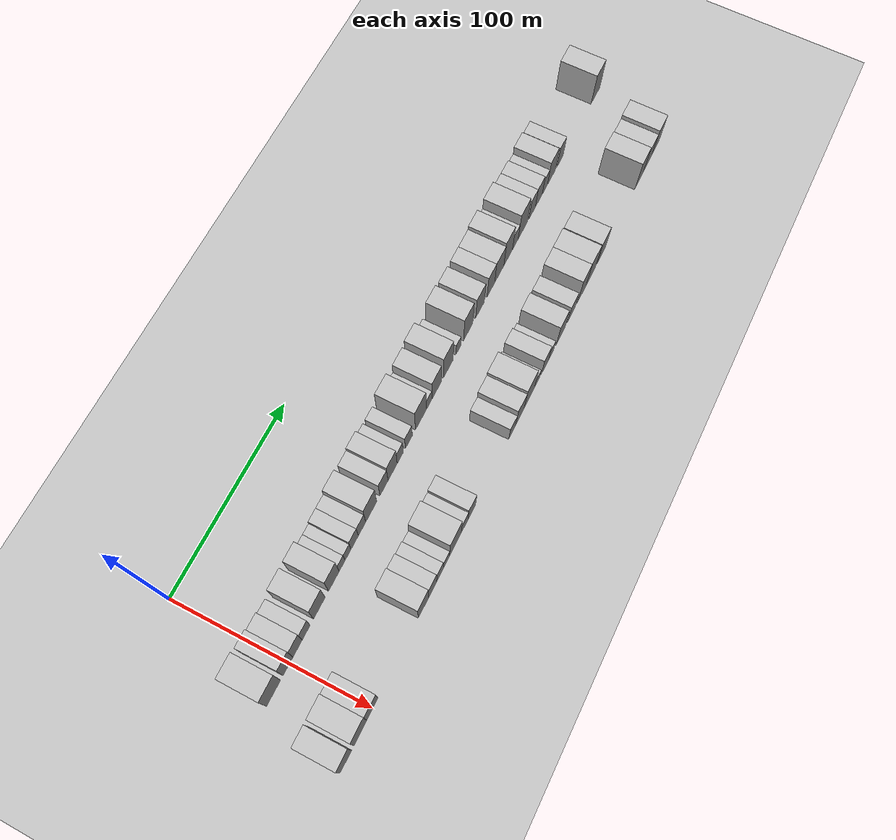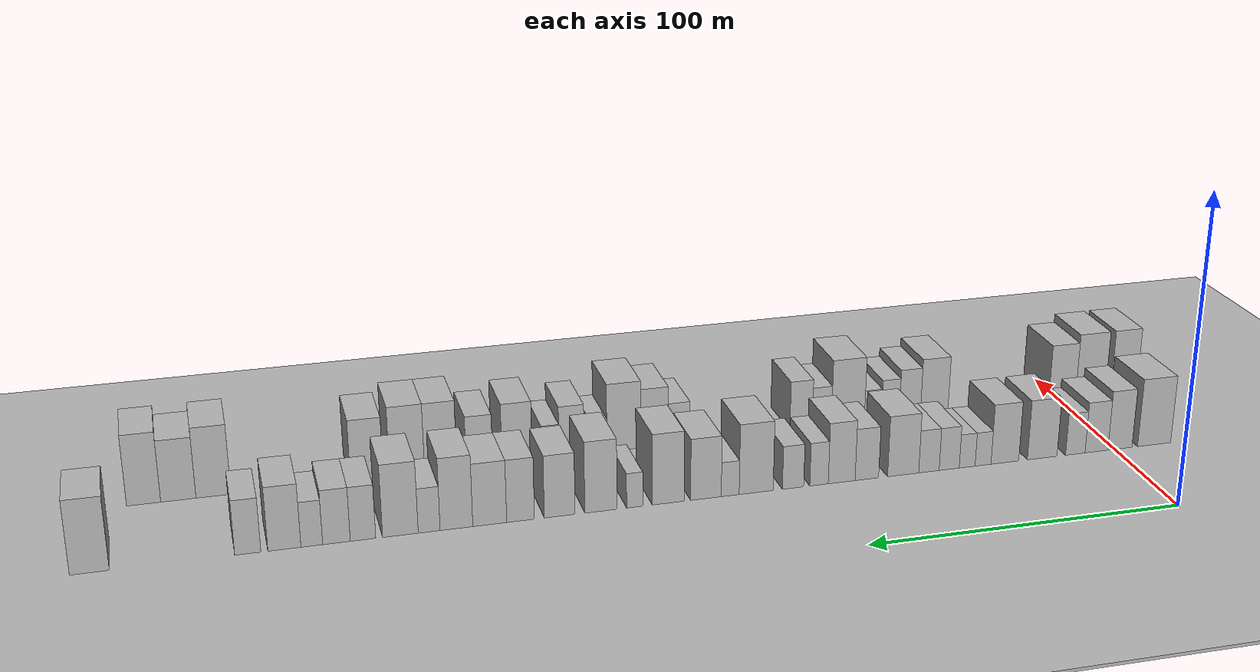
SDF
<sdf version="1.6">
 <world name="default">
  <include><name>ground_plane_1</name><uri>model://HANNAS_ground_plane</uri></include>
  <include>
   <name>ground_plane_2</name>
   <uri>model://HANNAS_ground_plane</uri>
   <pose>100 0 0  0 0 0</pose>
  </include>
  <model name="building_27">
   <static>1</static>
   <pose>50.0000 -13.4424 0 0.000000 0.000000 0.000000</pose>
   <link name="link">
    <pose>0 0 12.00 0 0 0</pose>
    <collision name="collision"><geometry><box><size>20.0000 11.8265 24.0000</size></box></geometry></collision>
    <visual name="visual">
     <cast_shadows>0</cast_shadows>
     <geometry><box><size>20.0000 11.8265 24.0000</size></box></geometry>
     <material>
      <script>
       <uri>model://HANNAS_wall/materials/scripts</uri>
       <uri>model://HANNAS_wall/materials/textures</uri>
       <name>vrc/HANNAS_wall</name>
      </script>
     </material>
    </visual>
   </link>
  </model>
  <model name="building_28">
   <static>1</static>
   <pose>50.0000 -1.2540 0 0.000000 0.000000 0.000000</pose>
   <link name="link">
    <pose>0 0 10.50 0 0 0</pose>
    <collision name="collision"><geometry><box><size>20.0000 8.5501 21.0000</size></box></geometry></collision>
    <visual name="visual">
     <cast_shadows>0</cast_shadows>
     <geometry><box><size>20.0000 8.5501 21.0000</size></box></geometry>
     <material>
      <script>
       <uri>model://HANNAS_wall/materials/scripts</uri>
       <uri>model://HANNAS_wall/materials/textures</uri>
       <name>vrc/HANNAS_wall</name>
      </script>
     </material>
    </visual>
   </link>
  </model>
  <model name="building_29">
   <static>1</static>
   <pose>50.0000 7.0445 0 0.000000 0.000000 0.000000</pose>
   <link name="link">
    <pose>0 0 9.00 0 0 0</pose>
    <collision name="collision"><geometry><box><size>20.0000 8.0470 18.0000</size></box></geometry></collision>
    <visual name="visual">
     <cast_shadows>0</cast_shadows>
     <geometry><box><size>20.0000 8.0470 18.0000</size></box></geometry>
     <material>
      <script>
       <uri>model://HANNAS_wall/materials/scripts</uri>
       <uri>model://HANNAS_wall/materials/textures</uri>
       <name>vrc/HANNAS_wall</name>
      </script>
     </material>
    </visual>
   </link>
  </model>
  <model name="building_30">
   <static>1</static>
   <pose>50.0000 14.4716 0 0.000000 0.000000 0.000000</pose>
   <link name="link">
    <pose>0 0 7.50 0 0 0</pose>
    <collision name="collision"><geometry><box><size>20.0000 6.8073 15.0000</size></box></geometry></collision>
    <visual name="visual">
     <cast_shadows>0</cast_shadows>
     <geometry><box><size>20.0000 6.8073 15.0000</size></box></geometry>
     <material>
      <script>
       <uri>model://HANNAS_wall/materials/scripts</uri>
       <uri>model://HANNAS_wall/materials/textures</uri>
       <name>vrc/HANNAS_wall</name>
      </script>
     </material>
    </visual>
   </link>
  </model>
  <model name="building_31">
   <static>1</static>
   <pose>50.0000 26.0191 0 0.000000 0.000000 0.000000</pose>
   <link name="link">
    <pose>0 0 10.50 0 0 0</pose>
    <collision name="collision"><geometry><box><size>20.0000 10.2875 21.0000</size></box></geometry></collision>
    <visual name="visual">
     <cast_shadows>0</cast_shadows>
     <geometry><box><size>20.0000 10.2875 21.0000</size></box></geometry>
     <material>
      <script>
       <uri>model://HANNAS_wall/materials/scripts</uri>
       <uri>model://HANNAS_wall/materials/textures</uri>
       <name>vrc/HANNAS_wall</name>
      </script>
     </material>
    </visual>
   </link>
  </model>
  <model name="building_32">
   <static>1</static>
   <pose>50.0000 38.9282 0 0.000000 0.000000 0.000000</pose>
   <link name="link">
    <pose>0 0 10.50 0 0 0</pose>
    <collision name="collision"><geometry><box><size>20.0000 9.5307 21.0000</size></box></geometry></collision>
    <visual name="visual">
     <cast_shadows>0</cast_shadows>
     <geometry><box><size>20.0000 9.5307 21.0000</size></box></geometry>
     <material>
      <script>
       <uri>model://HANNAS_wall/materials/scripts</uri>
       <uri>model://HANNAS_wall/materials/textures</uri>
       <name>vrc/HANNAS_wall</name>
      </script>
     </material>
    </visual>
   </link>
  </model>
  <model name="building_33">
   <static>1</static>
   <pose>50.0000 46.4095 0 0.000000 0.000000 0.000000</pose>
   <link name="link">
    <pose>0 0 6.00 0 0 0</pose>
    <collision name="collision"><geometry><box><size>20.0000 5.4320 12.0000</size></box></geometry></collision>
    <visual name="visual">
     <cast_shadows>0</cast_shadows>
     <geometry><box><size>20.0000 5.4320 12.0000</size></box></geometry>
     <material>
      <script>
       <uri>model://HANNAS_wall/materials/scripts</uri>
       <uri>model://HANNAS_wall/materials/textures</uri>
       <name>vrc/HANNAS_wall</name>
      </script>
     </material>
    </visual>
   </link>
  </model>
  <model name="building_34">
   <static>1</static>
   <pose>50.0000 51.8343 0 0.000000 0.000000 0.000000</pose>
   <link name="link">
    <pose>0 0 6.00 0 0 0</pose>
    <collision name="collision"><geometry><box><size>20.0000 5.4175 12.0000</size></box></geometry></collision>
    <visual name="visual">
     <cast_shadows>0</cast_shadows>
     <geometry><box><size>20.0000 5.4175 12.0000</size></box></geometry>
     <material>
      <script>
       <uri>model://HANNAS_wall/materials/scripts</uri>
       <uri>model://HANNAS_wall/materials/textures</uri>
       <name>vrc/HANNAS_wall</name>
      </script>
     </material>
    </visual>
   </link>
  </model>
  <model name="building_35">
   <static>1</static>
   <pose>50.0000 57.9451 0 0.000000 0.000000 0.000000</pose>
   <link name="link">
    <pose>0 0 7.50 0 0 0</pose>
    <collision name="collision"><geometry><box><size>20.0000 6.8042 15.0000</size></box></geometry></collision>
    <visual name="visual">
     <cast_shadows>0</cast_shadows>
     <geometry><box><size>20.0000 6.8042 15.0000</size></box></geometry>
     <material>
      <script>
       <uri>model://HANNAS_wall/materials/scripts</uri>
       <uri>model://HANNAS_wall/materials/textures</uri>
       <name>vrc/HANNAS_wall</name>
      </script>
     </material>
    </visual>
   </link>
  </model>
  <model name="building_36">
   <static>1</static>
   <pose>50.0000 64.7987 0 0.000000 0.000000 0.000000</pose>
   <link name="link">
    <pose>0 0 7.50 0 0 0</pose>
    <collision name="collision"><geometry><box><size>20.0000 6.9030 15.0000</size></box></geometry></collision>
    <visual name="visual">
     <cast_shadows>0</cast_shadows>
     <geometry><box><size>20.0000 6.9030 15.0000</size></box></geometry>
     <material>
      <script>
       <uri>model://HANNAS_wall/materials/scripts</uri>
       <uri>model://HANNAS_wall/materials/textures</uri>
       <name>vrc/HANNAS_wall</name>
      </script>
     </material>
    </visual>
   </link>
  </model>
  <model name="building_37">
   <static>1</static>
   <pose>50.0000 73.4553 0 0.000000 0.000000 0.000000</pose>
   <link name="link">
    <pose>0 0 10.50 0 0 0</pose>
    <collision name="collision"><geometry><box><size>20.0000 10.4101 21.0000</size></box></geometry></collision>
    <visual name="visual">
     <cast_shadows>0</cast_shadows>
     <geometry><box><size>20.0000 10.4101 21.0000</size></box></geometry>
     <material>
      <script>
       <uri>model://HANNAS_wall/materials/scripts</uri>
       <uri>model://HANNAS_wall/materials/textures</uri>
       <name>vrc/HANNAS_wall</name>
      </script>
     </material>
    </visual>
   </link>
  </model>
  <model name="building_38">
   <static>1</static>
   <pose>50.0000 85.5674 0 0.000000 0.000000 0.000000</pose>
   <link name="link">
    <pose>0 0 9.00 0 0 0</pose>
    <collision name="collision"><geometry><box><size>20.0000 7.8140 18.0000</size></box></geometry></collision>
    <visual name="visual">
     <cast_shadows>0</cast_shadows>
     <geometry><box><size>20.0000 7.8140 18.0000</size></box></geometry>
     <material>
      <script>
       <uri>model://HANNAS_wall/materials/scripts</uri>
       <uri>model://HANNAS_wall/materials/textures</uri>
       <name>vrc/HANNAS_wall</name>
      </script>
     </material>
    </visual>
   </link>
  </model>
  <model name="building_39">
   <static>1</static>
   <pose>50.0000 93.9009 0 0.000000 0.000000 0.000000</pose>
   <link name="link">
    <pose>0 0 10.50 0 0 0</pose>
    <collision name="collision"><geometry><box><size>20.0000 8.8532 21.0000</size></box></geometry></collision>
    <visual name="visual">
     <cast_shadows>0</cast_shadows>
     <geometry><box><size>20.0000 8.8532 21.0000</size></box></geometry>
     <material>
      <script>
       <uri>model://HANNAS_wall/materials/scripts</uri>
       <uri>model://HANNAS_wall/materials/textures</uri>
       <name>vrc/HANNAS_wall</name>
      </script>
     </material>
    </visual>
   </link>
  </model>
  <model name="building_40">
   <static>1</static>
   <pose>50.0000 101.3435 0 0.000000 0.000000 0.000000</pose>
   <link name="link">
    <pose>0 0 7.50 0 0 0</pose>
    <collision name="collision"><geometry><box><size>20.0000 6.0319 15.0000</size></box></geometry></collision>
    <visual name="visual">
     <cast_shadows>0</cast_shadows>
     <geometry><box><size>20.0000 6.0319 15.0000</size></box></geometry>
     <material>
      <script>
       <uri>model://HANNAS_wall/materials/scripts</uri>
       <uri>model://HANNAS_wall/materials/textures</uri>
       <name>vrc/HANNAS_wall</name>
      </script>
     </material>
    </visual>
   </link>
  </model>
  <model name="building_41">
   <static>1</static>
   <pose>50.0000 109.8195 0 0.000000 0.000000 0.000000</pose>
   <link name="link">
    <pose>0 0 7.50 0 0 0</pose>
    <collision name="collision"><geometry><box><size>20.0000 6.9199 15.0000</size></box></geometry></collision>
    <visual name="visual">
     <cast_shadows>0</cast_shadows>
     <geometry><box><size>20.0000 6.9199 15.0000</size></box></geometry>
     <material>
      <script>
       <uri>model://HANNAS_wall/materials/scripts</uri>
       <uri>model://HANNAS_wall/materials/textures</uri>
       <name>vrc/HANNAS_wall</name>
      </script>
     </material>
    </visual>
   </link>
  </model>
  <model name="building_42">
   <static>1</static>
   <pose>50.0000 121.7617 0 0.000000 0.000000 0.000000</pose>
   <link name="link">
    <pose>0 0 12.00 0 0 0</pose>
    <collision name="collision"><geometry><box><size>20.0000 10.9646 24.0000</size></box></geometry></collision>
    <visual name="visual">
     <cast_shadows>0</cast_shadows>
     <geometry><box><size>20.0000 10.9646 24.0000</size></box></geometry>
     <material>
      <script>
       <uri>model://HANNAS_wall/materials/scripts</uri>
       <uri>model://HANNAS_wall/materials/textures</uri>
       <name>vrc/HANNAS_wall</name>
      </script>
     </material>
    </visual>
   </link>
  </model>
  <model name="building_43">
   <static>1</static>
   <pose>50.0000 130.1045 0 0.000000 0.000000 0.000000</pose>
   <link name="link">
    <pose>0 0 6.00 0 0 0</pose>
    <collision name="collision"><geometry><box><size>20.0000 5.7210 12.0000</size></box></geometry></collision>
    <visual name="visual">
     <cast_shadows>0</cast_shadows>
     <geometry><box><size>20.0000 5.7210 12.0000</size></box></geometry>
     <material>
      <script>
       <uri>model://HANNAS_wall/materials/scripts</uri>
       <uri>model://HANNAS_wall/materials/textures</uri>
       <name>vrc/HANNAS_wall</name>
      </script>
     </material>
    </visual>
   </link>
  </model>
  <model name="building_44">
   <static>1</static>
   <pose>50.0000 137.8530 0 0.000000 0.000000 0.000000</pose>
   <link name="link">
    <pose>0 0 10.50 0 0 0</pose>
    <collision name="collision"><geometry><box><size>20.0000 9.7760 21.0000</size></box></geometry></collision>
    <visual name="visual">
     <cast_shadows>0</cast_shadows>
     <geometry><box><size>20.0000 9.7760 21.0000</size></box></geometry>
     <material>
      <script>
       <uri>model://HANNAS_wall/materials/scripts</uri>
       <uri>model://HANNAS_wall/materials/textures</uri>
       <name>vrc/HANNAS_wall</name>
      </script>
     </material>
    </visual>
   </link>
  </model>
  <model name="building_45">
   <static>1</static>
   <pose>50.0000 149.7841 0 0.000000 0.000000 0.000000</pose>
   <link name="link">
    <pose>0 0 12.00 0 0 0</pose>
    <collision name="collision"><geometry><box><size>20.0000 10.0864 24.0000</size></box></geometry></collision>
    <visual name="visual">
     <cast_shadows>0</cast_shadows>
     <geometry><box><size>20.0000 10.0864 24.0000</size></box></geometry>
     <material>
      <script>
       <uri>model://HANNAS_wall/materials/scripts</uri>
       <uri>model://HANNAS_wall/materials/textures</uri>
       <name>vrc/HANNAS_wall</name>
      </script>
     </material>
    </visual>
   </link>
  </model>
  <model name="building_46">
   <static>1</static>
   <pose>50.0000 160.3457 0 0.000000 0.000000 0.000000</pose>
   <link name="link">
    <pose>0 0 6.00 0 0 0</pose>
    <collision name="collision"><geometry><box><size>20.0000 5.0367 12.0000</size></box></geometry></collision>
    <visual name="visual">
     <cast_shadows>0</cast_shadows>
     <geometry><box><size>20.0000 5.0367 12.0000</size></box></geometry>
     <material>
      <script>
       <uri>model://HANNAS_wall/materials/scripts</uri>
       <uri>model://HANNAS_wall/materials/textures</uri>
       <name>vrc/HANNAS_wall</name>
      </script>
     </material>
    </visual>
   </link>
  </model>
  <model name="building_47">
   <static>1</static>
   <pose>50.0000 170.8493 0 0.000000 0.000000 0.000000</pose>
   <link name="link">
    <pose>0 0 12.00 0 0 0</pose>
    <collision name="collision"><geometry><box><size>20.0000 9.9705 24.0000</size></box></geometry></collision>
    <visual name="visual">
     <cast_shadows>0</cast_shadows>
     <geometry><box><size>20.0000 9.9705 24.0000</size></box></geometry>
     <material>
      <script>
       <uri>model://HANNAS_wall/materials/scripts</uri>
       <uri>model://HANNAS_wall/materials/textures</uri>
       <name>vrc/HANNAS_wall</name>
      </script>
     </material>
    </visual>
   </link>
  </model>
  <model name="building_48">
   <static>1</static>
   <pose>50.0000 183.5545 0 0.000000 0.000000 0.000000</pose>
   <link name="link">
    <pose>0 0 10.50 0 0 0</pose>
    <collision name="collision"><geometry><box><size>20.0000 9.4399 21.0000</size></box></geometry></collision>
    <visual name="visual">
     <cast_shadows>0</cast_shadows>
     <geometry><box><size>20.0000 9.4399 21.0000</size></box></geometry>
     <material>
      <script>
       <uri>model://HANNAS_wall/materials/scripts</uri>
       <uri>model://HANNAS_wall/materials/textures</uri>
       <name>vrc/HANNAS_wall</name>
      </script>
     </material>
    </visual>
   </link>
  </model>
  <model name="building_49">
   <static>1</static>
   <pose>50.0000 195.4956 0 0.000000 0.000000 0.000000</pose>
   <link name="link">
    <pose>0 0 10.50 0 0 0</pose>
    <collision name="collision"><geometry><box><size>20.0000 8.4423 21.0000</size></box></geometry></collision>
    <visual name="visual">
     <cast_shadows>0</cast_shadows>
     <geometry><box><size>20.0000 8.4423 21.0000</size></box></geometry>
     <material>
      <script>
       <uri>model://HANNAS_wall/materials/scripts</uri>
       <uri>model://HANNAS_wall/materials/textures</uri>
       <name>vrc/HANNAS_wall</name>
      </script>
     </material>
    </visual>
   </link>
  </model>
  <model name="building_50">
   <static>1</static>
   <pose>50.0000 204.8326 0 0.000000 0.000000 0.000000</pose>
   <link name="link">
    <pose>0 0 10.50 0 0 0</pose>
    <collision name="collision"><geometry><box><size>20.0000 10.2317 21.0000</size></box></geometry></collision>
    <visual name="visual">
     <cast_shadows>0</cast_shadows>
     <geometry><box><size>20.0000 10.2317 21.0000</size></box></geometry>
     <material>
      <script>
       <uri>model://HANNAS_wall/materials/scripts</uri>
       <uri>model://HANNAS_wall/materials/textures</uri>
       <name>vrc/HANNAS_wall</name>
      </script>
     </material>
    </visual>
   </link>
  </model>
  <model name="building_51">
   <static>1</static>
   <pose>50.0000 214.8305 0 0.000000 0.000000 0.000000</pose>
   <link name="link">
    <pose>0 0 12.00 0 0 0</pose>
    <collision name="collision"><geometry><box><size>20.0000 9.7640 24.0000</size></box></geometry></collision>
    <visual name="visual">
     <cast_shadows>0</cast_shadows>
     <geometry><box><size>20.0000 9.7640 24.0000</size></box></geometry>
     <material>
      <script>
       <uri>model://HANNAS_wall/materials/scripts</uri>
       <uri>model://HANNAS_wall/materials/textures</uri>
       <name>vrc/HANNAS_wall</name>
      </script>
     </material>
    </visual>
   </link>
  </model>
  <model name="building_52">
   <static>1</static>
   <pose>50.0000 222.9676 0 0.000000 0.000000 0.000000</pose>
   <link name="link">
    <pose>0 0 7.50 0 0 0</pose>
    <collision name="collision"><geometry><box><size>20.0000 6.5101 15.0000</size></box></geometry></collision>
    <visual name="visual">
     <cast_shadows>0</cast_shadows>
     <geometry><box><size>20.0000 6.5101 15.0000</size></box></geometry>
     <material>
      <script>
       <uri>model://HANNAS_wall/materials/scripts</uri>
       <uri>model://HANNAS_wall/materials/textures</uri>
       <name>vrc/HANNAS_wall</name>
      </script>
     </material>
    </visual>
   </link>
  </model>
  <model name="building_53">
   <static>1</static>
   <pose>50.0000 231.4783 0 0.000000 0.000000 0.000000</pose>
   <link name="link">
    <pose>0 0 12.00 0 0 0</pose>
    <collision name="collision"><geometry><box><size>20.0000 10.5115 24.0000</size></box></geometry></collision>
    <visual name="visual">
     <cast_shadows>0</cast_shadows>
     <geometry><box><size>20.0000 10.5115 24.0000</size></box></geometry>
     <material>
      <script>
       <uri>model://HANNAS_wall/materials/scripts</uri>
       <uri>model://HANNAS_wall/materials/textures</uri>
       <name>vrc/HANNAS_wall</name>
      </script>
     </material>
    </visual>
   </link>
  </model>
  <model name="building_54">
   <static>1</static>
   <pose>50.0000 242.4582 0 0.000000 0.000000 0.000000</pose>
   <link name="link">
    <pose>0 0 9.00 0 0 0</pose>
    <collision name="collision"><geometry><box><size>20.0000 7.4483 18.0000</size></box></geometry></collision>
    <visual name="visual">
     <cast_shadows>0</cast_shadows>
     <geometry><box><size>20.0000 7.4483 18.0000</size></box></geometry>
     <material>
      <script>
       <uri>model://HANNAS_wall/materials/scripts</uri>
       <uri>model://HANNAS_wall/materials/textures</uri>
       <name>vrc/HANNAS_wall</name>
      </script>
     </material>
    </visual>
   </link>
  </model>
  <model name="building_55">
   <static>1</static>
   <pose>50.0000 250.1970 0 0.000000 0.000000 0.000000</pose>
   <link name="link">
    <pose>0 0 9.00 0 0 0</pose>
    <collision name="collision"><geometry><box><size>20.0000 8.0293 18.0000</size></box></geometry></collision>
    <visual name="visual">
     <cast_shadows>0</cast_shadows>
     <geometry><box><size>20.0000 8.0293 18.0000</size></box></geometry>
     <material>
      <script>
       <uri>model://HANNAS_wall/materials/scripts</uri>
       <uri>model://HANNAS_wall/materials/textures</uri>
       <name>vrc/HANNAS_wall</name>
      </script>
     </material>
    </visual>
   </link>
  </model>
  <model name="building_56">
   <static>1</static>
   <pose>50.0000 257.3411 0 0.000000 0.000000 0.000000</pose>
   <link name="link">
    <pose>0 0 7.50 0 0 0</pose>
    <collision name="collision"><geometry><box><size>20.0000 6.2587 15.0000</size></box></geometry></collision>
    <visual name="visual">
     <cast_shadows>0</cast_shadows>
     <geometry><box><size>20.0000 6.2587 15.0000</size></box></geometry>
     <material>
      <script>
       <uri>model://HANNAS_wall/materials/scripts</uri>
       <uri>model://HANNAS_wall/materials/textures</uri>
       <name>vrc/HANNAS_wall</name>
      </script>
     </material>
    </visual>
   </link>
  </model>
  <model name="building_57">
   <static>1</static>
   <pose>50.0000 265.2137 0 0.000000 0.000000 0.000000</pose>
   <link name="link">
    <pose>0 0 10.50 0 0 0</pose>
    <collision name="collision"><geometry><box><size>20.0000 9.4865 21.0000</size></box></geometry></collision>
    <visual name="visual">
     <cast_shadows>0</cast_shadows>
     <geometry><box><size>20.0000 9.4865 21.0000</size></box></geometry>
     <material>
      <script>
       <uri>model://HANNAS_wall/materials/scripts</uri>
       <uri>model://HANNAS_wall/materials/textures</uri>
       <name>vrc/HANNAS_wall</name>
      </script>
     </material>
    </visual>
   </link>
  </model>
  <model name="building_58">
   <static>1</static>
   <pose>50.0000 275.6869 0 0.000000 0.000000 0.000000</pose>
   <link name="link">
    <pose>0 0 9.00 0 0 0</pose>
    <collision name="collision"><geometry><box><size>20.0000 7.4600 18.0000</size></box></geometry></collision>
    <visual name="visual">
     <cast_shadows>0</cast_shadows>
     <geometry><box><size>20.0000 7.4600 18.0000</size></box></geometry>
     <material>
      <script>
       <uri>model://HANNAS_wall/materials/scripts</uri>
       <uri>model://HANNAS_wall/materials/textures</uri>
       <name>vrc/HANNAS_wall</name>
      </script>
     </material>
    </visual>
   </link>
  </model>
  <model name="building_59">
   <static>1</static>
   <pose>50.0000 319.8931 0 0.000000 0.000000 0.000000</pose>
   <link name="link">
    <pose>0 0 12.00 0 0 0</pose>
    <collision name="collision"><geometry><box><size>20.0000 10.9841 24.0000</size></box></geometry></collision>
    <visual name="visual">
     <cast_shadows>0</cast_shadows>
     <geometry><box><size>20.0000 10.9841 24.0000</size></box></geometry>
     <material>
      <script>
       <uri>model://HANNAS_wall/materials/scripts</uri>
       <uri>model://HANNAS_wall/materials/textures</uri>
       <name>vrc/HANNAS_wall</name>
      </script>
     </material>
    </visual>
   </link>
  </model>
  <model name="building_92">
   <static>1</static>
   <pose>90.0000 -23.3345 0 0.000000 0.000000 0.000000</pose>
   <link name="link">
    <pose>0 0 12.00 0 0 0</pose>
    <collision name="collision"><geometry><box><size>20.0000 9.8511 24.0000</size></box></geometry></collision>
    <visual name="visual">
     <cast_shadows>0</cast_shadows>
     <geometry><box><size>20.0000 9.8511 24.0000</size></box></geometry>
     <material>
      <script>
       <uri>model://HANNAS_wall/materials/scripts</uri>
       <uri>model://HANNAS_wall/materials/textures</uri>
       <name>vrc/HANNAS_wall</name>
      </script>
     </material>
    </visual>
   </link>
  </model>
  <model name="building_93">
   <static>1</static>
   <pose>90.0000 -10.8529 0 0.000000 0.000000 0.000000</pose>
   <link name="link">
    <pose>0 0 12.00 0 0 0</pose>
    <collision name="collision"><geometry><box><size>20.0000 11.1121 24.0000</size></box></geometry></collision>
    <visual name="visual">
     <cast_shadows>0</cast_shadows>
     <geometry><box><size>20.0000 11.1121 24.0000</size></box></geometry>
     <material>
      <script>
       <uri>model://HANNAS_wall/materials/scripts</uri>
       <uri>model://HANNAS_wall/materials/textures</uri>
       <name>vrc/HANNAS_wall</name>
      </script>
     </material>
    </visual>
   </link>
  </model>
  <model name="building_94">
   <static>1</static>
   <pose>90.0000 -0.3164 0 0.000000 0.000000 0.000000</pose>
   <link name="link">
    <pose>0 0 10.50 0 0 0</pose>
    <collision name="collision"><geometry><box><size>20.0000 9.9607 21.0000</size></box></geometry></collision>
    <visual name="visual">
     <cast_shadows>0</cast_shadows>
     <geometry><box><size>20.0000 9.9607 21.0000</size></box></geometry>
     <material>
      <script>
       <uri>model://HANNAS_wall/materials/scripts</uri>
       <uri>model://HANNAS_wall/materials/textures</uri>
       <name>vrc/HANNAS_wall</name>
      </script>
     </material>
    </visual>
   </link>
  </model>
  <model name="building_95">
   <static>1</static>
   <pose>90.0000 46.4864 0 0.000000 0.000000 0.000000</pose>
   <link name="link">
    <pose>0 0 10.50 0 0 0</pose>
    <collision name="collision"><geometry><box><size>20.0000 9.8816 21.0000</size></box></geometry></collision>
    <visual name="visual">
     <cast_shadows>0</cast_shadows>
     <geometry><box><size>20.0000 9.8816 21.0000</size></box></geometry>
     <material>
      <script>
       <uri>model://HANNAS_wall/materials/scripts</uri>
       <uri>model://HANNAS_wall/materials/textures</uri>
       <name>vrc/HANNAS_wall</name>
      </script>
     </material>
    </visual>
   </link>
  </model>
  <model name="building_96">
   <static>1</static>
   <pose>90.0000 55.2190 0 0.000000 0.000000 0.000000</pose>
   <link name="link">
    <pose>0 0 9.00 0 0 0</pose>
    <collision name="collision"><geometry><box><size>20.0000 7.5835 18.0000</size></box></geometry></collision>
    <visual name="visual">
     <cast_shadows>0</cast_shadows>
     <geometry><box><size>20.0000 7.5835 18.0000</size></box></geometry>
     <material>
      <script>
       <uri>model://HANNAS_wall/materials/scripts</uri>
       <uri>model://HANNAS_wall/materials/textures</uri>
       <name>vrc/HANNAS_wall</name>
      </script>
     </material>
    </visual>
   </link>
  </model>
  <model name="building_97">
   <static>1</static>
   <pose>90.0000 62.1937 0 0.000000 0.000000 0.000000</pose>
   <link name="link">
    <pose>0 0 7.50 0 0 0</pose>
    <collision name="collision"><geometry><box><size>20.0000 6.3659 15.0000</size></box></geometry></collision>
    <visual name="visual">
     <cast_shadows>0</cast_shadows>
     <geometry><box><size>20.0000 6.3659 15.0000</size></box></geometry>
     <material>
      <script>
       <uri>model://HANNAS_wall/materials/scripts</uri>
       <uri>model://HANNAS_wall/materials/textures</uri>
       <name>vrc/HANNAS_wall</name>
      </script>
     </material>
    </visual>
   </link>
  </model>
  <model name="building_98">
   <static>1</static>
   <pose>90.0000 68.3756 0 0.000000 0.000000 0.000000</pose>
   <link name="link">
    <pose>0 0 6.00 0 0 0</pose>
    <collision name="collision"><geometry><box><size>20.0000 5.9979 12.0000</size></box></geometry></collision>
    <visual name="visual">
     <cast_shadows>0</cast_shadows>
     <geometry><box><size>20.0000 5.9979 12.0000</size></box></geometry>
     <material>
      <script>
       <uri>model://HANNAS_wall/materials/scripts</uri>
       <uri>model://HANNAS_wall/materials/textures</uri>
       <name>vrc/HANNAS_wall</name>
      </script>
     </material>
    </visual>
   </link>
  </model>
  <model name="building_99">
   <static>1</static>
   <pose>90.0000 77.1770 0 0.000000 0.000000 0.000000</pose>
   <link name="link">
    <pose>0 0 12.00 0 0 0</pose>
    <collision name="collision"><geometry><box><size>20.0000 11.6049 24.0000</size></box></geometry></collision>
    <visual name="visual">
     <cast_shadows>0</cast_shadows>
     <geometry><box><size>20.0000 11.6049 24.0000</size></box></geometry>
     <material>
      <script>
       <uri>model://HANNAS_wall/materials/scripts</uri>
       <uri>model://HANNAS_wall/materials/textures</uri>
       <name>vrc/HANNAS_wall</name>
      </script>
     </material>
    </visual>
   </link>
  </model>
  <model name="building_100">
   <static>1</static>
   <pose>90.0000 86.3092 0 0.000000 0.000000 0.000000</pose>
   <link name="link">
    <pose>0 0 7.50 0 0 0</pose>
    <collision name="collision"><geometry><box><size>20.0000 6.6594 15.0000</size></box></geometry></collision>
    <visual name="visual">
     <cast_shadows>0</cast_shadows>
     <geometry><box><size>20.0000 6.6594 15.0000</size></box></geometry>
     <material>
      <script>
       <uri>model://HANNAS_wall/materials/scripts</uri>
       <uri>model://HANNAS_wall/materials/textures</uri>
       <name>vrc/HANNAS_wall</name>
      </script>
     </material>
    </visual>
   </link>
  </model>
  <model name="building_101">
   <static>1</static>
   <pose>90.0000 93.5126 0 0.000000 0.000000 0.000000</pose>
   <link name="link">
    <pose>0 0 9.00 0 0 0</pose>
    <collision name="collision"><geometry><box><size>20.0000 7.7475 18.0000</size></box></geometry></collision>
    <visual name="visual">
     <cast_shadows>0</cast_shadows>
     <geometry><box><size>20.0000 7.7475 18.0000</size></box></geometry>
     <material>
      <script>
       <uri>model://HANNAS_wall/materials/scripts</uri>
       <uri>model://HANNAS_wall/materials/textures</uri>
       <name>vrc/HANNAS_wall</name>
      </script>
     </material>
    </visual>
   </link>
  </model>
  <model name="building_102">
   <static>1</static>
   <pose>90.0000 135.2506 0 0.000000 0.000000 0.000000</pose>
   <link name="link">
    <pose>0 0 7.50 0 0 0</pose>
    <collision name="collision"><geometry><box><size>20.0000 7.2428 15.0000</size></box></geometry></collision>
    <visual name="visual">
     <cast_shadows>0</cast_shadows>
     <geometry><box><size>20.0000 7.2428 15.0000</size></box></geometry>
     <material>
      <script>
       <uri>model://HANNAS_wall/materials/scripts</uri>
       <uri>model://HANNAS_wall/materials/textures</uri>
       <name>vrc/HANNAS_wall</name>
      </script>
     </material>
    </visual>
   </link>
  </model>
  <model name="building_103">
   <static>1</static>
   <pose>90.0000 143.4629 0 0.000000 0.000000 0.000000</pose>
   <link name="link">
    <pose>0 0 10.50 0 0 0</pose>
    <collision name="collision"><geometry><box><size>20.0000 9.1817 21.0000</size></box></geometry></collision>
    <visual name="visual">
     <cast_shadows>0</cast_shadows>
     <geometry><box><size>20.0000 9.1817 21.0000</size></box></geometry>
     <material>
      <script>
       <uri>model://HANNAS_wall/materials/scripts</uri>
       <uri>model://HANNAS_wall/materials/textures</uri>
       <name>vrc/HANNAS_wall</name>
      </script>
     </material>
    </visual>
   </link>
  </model>
  <model name="building_104">
   <static>1</static>
   <pose>90.0000 153.6784 0 0.000000 0.000000 0.000000</pose>
   <link name="link">
    <pose>0 0 12.00 0 0 0</pose>
    <collision name="collision"><geometry><box><size>20.0000 11.2494 24.0000</size></box></geometry></collision>
    <visual name="visual">
     <cast_shadows>0</cast_shadows>
     <geometry><box><size>20.0000 11.2494 24.0000</size></box></geometry>
     <material>
      <script>
       <uri>model://HANNAS_wall/materials/scripts</uri>
       <uri>model://HANNAS_wall/materials/textures</uri>
       <name>vrc/HANNAS_wall</name>
      </script>
     </material>
    </visual>
   </link>
  </model>
  <model name="building_105">
   <static>1</static>
   <pose>90.0000 162.0528 0 0.000000 0.000000 0.000000</pose>
   <link name="link">
    <pose>0 0 6.00 0 0 0</pose>
    <collision name="collision"><geometry><box><size>20.0000 5.4996 12.0000</size></box></geometry></collision>
    <visual name="visual">
     <cast_shadows>0</cast_shadows>
     <geometry><box><size>20.0000 5.4996 12.0000</size></box></geometry>
     <material>
      <script>
       <uri>model://HANNAS_wall/materials/scripts</uri>
       <uri>model://HANNAS_wall/materials/textures</uri>
       <name>vrc/HANNAS_wall</name>
      </script>
     </material>
    </visual>
   </link>
  </model>
  <model name="building_106">
   <static>1</static>
   <pose>90.0000 170.9124 0 0.000000 0.000000 0.000000</pose>
   <link name="link">
    <pose>0 0 9.00 0 0 0</pose>
    <collision name="collision"><geometry><box><size>20.0000 8.2195 18.0000</size></box></geometry></collision>
    <visual name="visual">
     <cast_shadows>0</cast_shadows>
     <geometry><box><size>20.0000 8.2195 18.0000</size></box></geometry>
     <material>
      <script>
       <uri>model://HANNAS_wall/materials/scripts</uri>
       <uri>model://HANNAS_wall/materials/textures</uri>
       <name>vrc/HANNAS_wall</name>
      </script>
     </material>
    </visual>
   </link>
  </model>
  <model name="building_107">
   <static>1</static>
   <pose>90.0000 177.8979 0 0.000000 0.000000 0.000000</pose>
   <link name="link">
    <pose>0 0 6.00 0 0 0</pose>
    <collision name="collision"><geometry><box><size>20.0000 5.7516 12.0000</size></box></geometry></collision>
    <visual name="visual">
     <cast_shadows>0</cast_shadows>
     <geometry><box><size>20.0000 5.7516 12.0000</size></box></geometry>
     <material>
      <script>
       <uri>model://HANNAS_wall/materials/scripts</uri>
       <uri>model://HANNAS_wall/materials/textures</uri>
       <name>vrc/HANNAS_wall</name>
      </script>
     </material>
    </visual>
   </link>
  </model>
  <model name="building_108">
   <static>1</static>
   <pose>90.0000 188.6570 0 0.000000 0.000000 0.000000</pose>
   <link name="link">
    <pose>0 0 10.50 0 0 0</pose>
    <collision name="collision"><geometry><box><size>20.0000 9.7667 21.0000</size></box></geometry></collision>
    <visual name="visual">
     <cast_shadows>0</cast_shadows>
     <geometry><box><size>20.0000 9.7667 21.0000</size></box></geometry>
     <material>
      <script>
       <uri>model://HANNAS_wall/materials/scripts</uri>
       <uri>model://HANNAS_wall/materials/textures</uri>
       <name>vrc/HANNAS_wall</name>
      </script>
     </material>
    </visual>
   </link>
  </model>
  <model name="building_109">
   <static>1</static>
   <pose>90.0000 200.7852 0 0.000000 0.000000 0.000000</pose>
   <link name="link">
    <pose>0 0 9.00 0 0 0</pose>
    <collision name="collision"><geometry><box><size>20.0000 8.4896 18.0000</size></box></geometry></collision>
    <visual name="visual">
     <cast_shadows>0</cast_shadows>
     <geometry><box><size>20.0000 8.4896 18.0000</size></box></geometry>
     <material>
      <script>
       <uri>model://HANNAS_wall/materials/scripts</uri>
       <uri>model://HANNAS_wall/materials/textures</uri>
       <name>vrc/HANNAS_wall</name>
      </script>
     </material>
    </visual>
   </link>
  </model>
  <model name="building_110">
   <static>1</static>
   <pose>90.0000 213.1345 0 0.000000 0.000000 0.000000</pose>
   <link name="link">
    <pose>0 0 12.00 0 0 0</pose>
    <collision name="collision"><geometry><box><size>20.0000 10.2092 24.0000</size></box></geometry></collision>
    <visual name="visual">
     <cast_shadows>0</cast_shadows>
     <geometry><box><size>20.0000 10.2092 24.0000</size></box></geometry>
     <material>
      <script>
       <uri>model://HANNAS_wall/materials/scripts</uri>
       <uri>model://HANNAS_wall/materials/textures</uri>
       <name>vrc/HANNAS_wall</name>
      </script>
     </material>
    </visual>
   </link>
  </model>
  <model name="building_111">
   <static>1</static>
   <pose>90.0000 223.7294 0 0.000000 0.000000 0.000000</pose>
   <link name="link">
    <pose>0 0 12.00 0 0 0</pose>
    <collision name="collision"><geometry><box><size>20.0000 10.9805 24.0000</size></box></geometry></collision>
    <visual name="visual">
     <cast_shadows>0</cast_shadows>
     <geometry><box><size>20.0000 10.9805 24.0000</size></box></geometry>
     <material>
      <script>
       <uri>model://HANNAS_wall/materials/scripts</uri>
       <uri>model://HANNAS_wall/materials/textures</uri>
       <name>vrc/HANNAS_wall</name>
      </script>
     </material>
    </visual>
   </link>
  </model>
  <model name="building_112">
   <static>1</static>
   <pose>90.0000 236.3527 0 0.000000 0.000000 0.000000</pose>
   <link name="link">
    <pose>0 0 10.50 0 0 0</pose>
    <collision name="collision"><geometry><box><size>20.0000 10.2661 21.0000</size></box></geometry></collision>
    <visual name="visual">
     <cast_shadows>0</cast_shadows>
     <geometry><box><size>20.0000 10.2661 21.0000</size></box></geometry>
     <material>
      <script>
       <uri>model://HANNAS_wall/materials/scripts</uri>
       <uri>model://HANNAS_wall/materials/textures</uri>
       <name>vrc/HANNAS_wall</name>
      </script>
     </material>
    </visual>
   </link>
  </model>
  <model name="building_113">
   <static>1</static>
   <pose>90.0000 283.2901 0 0.000000 0.000000 0.000000</pose>
   <link name="link">
    <pose>0 0 12.00 0 0 0</pose>
    <collision name="collision"><geometry><box><size>20.0000 10.5362 24.0000</size></box></geometry></collision>
    <visual name="visual">
     <cast_shadows>0</cast_shadows>
     <geometry><box><size>20.0000 10.5362 24.0000</size></box></geometry>
     <material>
      <script>
       <uri>model://HANNAS_wall/materials/scripts</uri>
       <uri>model://HANNAS_wall/materials/textures</uri>
       <name>vrc/HANNAS_wall</name>
      </script>
     </material>
    </visual>
   </link>
  </model>
  <model name="building_114">
   <static>1</static>
   <pose>90.0000 293.8077 0 0.000000 0.000000 0.000000</pose>
   <link name="link">
    <pose>0 0 10.50 0 0 0</pose>
    <collision name="collision"><geometry><box><size>20.0000 10.4990 21.0000</size></box></geometry></collision>
    <visual name="visual">
     <cast_shadows>0</cast_shadows>
     <geometry><box><size>20.0000 10.4990 21.0000</size></box></geometry>
     <material>
      <script>
       <uri>model://HANNAS_wall/materials/scripts</uri>
       <uri>model://HANNAS_wall/materials/textures</uri>
       <name>vrc/HANNAS_wall</name>
      </script>
     </material>
    </visual>
   </link>
  </model>
  <model name="building_115">
   <static>1</static>
   <pose>90.0000 304.1115 0 0.000000 0.000000 0.000000</pose>
   <link name="link">
    <pose>0 0 12.00 0 0 0</pose>
    <collision name="collision"><geometry><box><size>20.0000 10.1087 24.0000</size></box></geometry></collision>
    <visual name="visual">
     <cast_shadows>0</cast_shadows>
     <geometry><box><size>20.0000 10.1087 24.0000</size></box></geometry>
     <material>
      <script>
       <uri>model://HANNAS_wall/materials/scripts</uri>
       <uri>model://HANNAS_wall/materials/textures</uri>
       <name>vrc/HANNAS_wall</name>
      </script>
     </material>
    </visual>
   </link>
  </model>
 </world>
</sdf>
